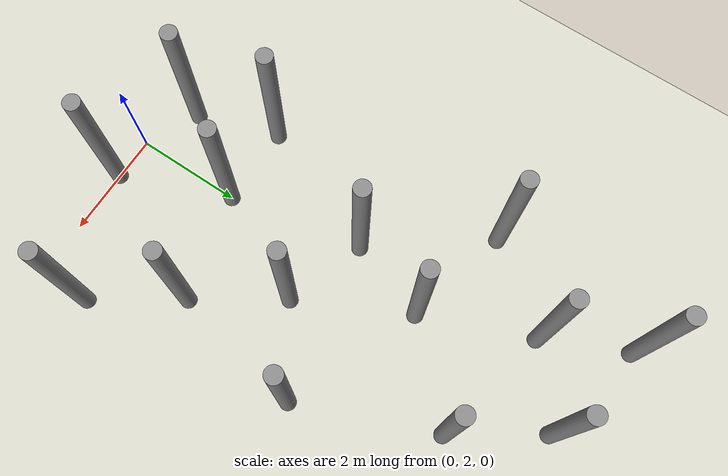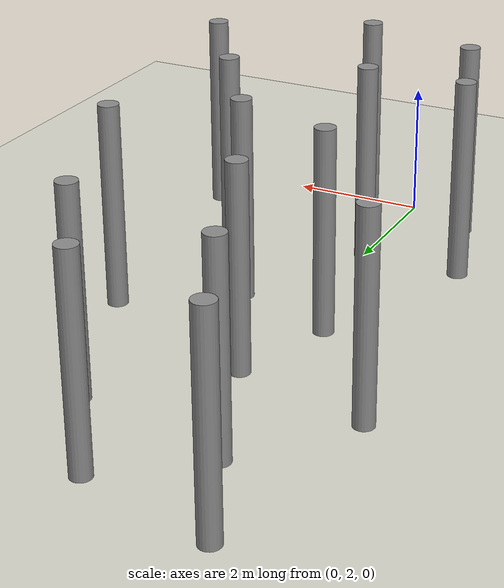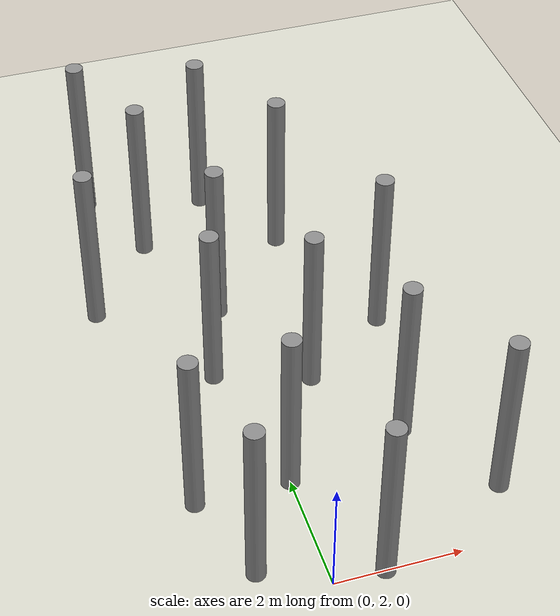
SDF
<?xml version="1.0" encoding="UTF-8"?>
<sdf version="1.9">
  <world name="pillars">
    <physics type="ode">
      <max_step_size>0.004</max_step_size>
      <real_time_factor>1.0</real_time_factor>
      <real_time_update_rate>250</real_time_update_rate>
    </physics>

    <plugin filename="gz-sim-physics-system" name="gz::sim::systems::Physics">
      <engine><filename>gz-physics-dartsim-plugin</filename></engine>
    </plugin>
    <plugin filename="gz-sim-navsat-system" name="gz::sim::systems::NavSat"/>
    <plugin filename="gz-sim-scene-broadcaster-system" name="gz::sim::systems::SceneBroadcaster"/>
    <plugin filename="gz-sim-user-commands-system" name="gz::sim::systems::UserCommands"/>
    <plugin filename="gz-sim-sensors-system" name="gz::sim::systems::Sensors">
      <render_engine>ogre2</render_engine>
    </plugin>
    <plugin filename="gz-sim-imu-system" name="gz::sim::systems::Imu"/>
    <plugin filename="gz-sim-magnetometer-system" name="gz::sim::systems::Magnetometer"/>
    <plugin filename="gz-sim-air-pressure-system" name="gz::sim::systems::AirPressure"/>

    <gravity>0 0 -9.8</gravity>
    <magnetic_field>6e-06 2.3e-05 -4.2e-05</magnetic_field>
    <atmosphere type="adiabatic"/>
    <scene>
      <grid>false</grid>
      <ambient>0.4 0.4 0.4 1</ambient>
      <background>0.7 0.8 0.95 1</background>
      <shadows>true</shadows>
    </scene>

    <!-- Ground -->
    <model name="ground_plane">
      <static>true</static>
      <link name="link">
        <collision name="collision">
          <geometry><plane><normal>0 0 1</normal><size>1 1</size></plane></geometry>
        </collision>
        <visual name="visual">
          <geometry><plane><normal>0 0 1</normal><size>500 500</size></plane></geometry>
          <material>
            <ambient>0.85 0.85 0.80 1</ambient>
            <diffuse>0.85 0.85 0.80 1</diffuse>
          </material>
        </visual>
      </link>
    </model>

    <!-- Row 1: near spawn -->
    <model name="pillar_01"><static>true</static>
      <pose>0.8 2.0 1.5 0 0 0</pose>
      <link name="link">
        <collision name="c"><geometry><cylinder><radius>0.15</radius><length>3.0</length></cylinder></geometry></collision>
        <visual name="v"><geometry><cylinder><radius>0.15</radius><length>3.0</length></cylinder></geometry>
          <material><ambient>0.55 0.55 0.55 1</ambient><diffuse>0.55 0.55 0.55 1</diffuse></material></visual>
      </link>
    </model>

    <model name="pillar_02"><static>true</static>
      <pose>-1.0 2.5 1.5 0 0 0</pose>
      <link name="link">
        <collision name="c"><geometry><cylinder><radius>0.15</radius><length>3.0</length></cylinder></geometry></collision>
        <visual name="v"><geometry><cylinder><radius>0.15</radius><length>3.0</length></cylinder></geometry>
          <material><ambient>0.55 0.55 0.55 1</ambient><diffuse>0.55 0.55 0.55 1</diffuse></material></visual>
      </link>
    </model>

    <!-- Row 2 -->
    <model name="pillar_03"><static>true</static>
      <pose>0.0 4.0 1.5 0 0 0</pose>
      <link name="link">
        <collision name="c"><geometry><cylinder><radius>0.15</radius><length>3.0</length></cylinder></geometry></collision>
        <visual name="v"><geometry><cylinder><radius>0.15</radius><length>3.0</length></cylinder></geometry>
          <material><ambient>0.55 0.55 0.55 1</ambient><diffuse>0.55 0.55 0.55 1</diffuse></material></visual>
      </link>
    </model>

    <model name="pillar_04"><static>true</static>
      <pose>2.0 4.5 1.5 0 0 0</pose>
      <link name="link">
        <collision name="c"><geometry><cylinder><radius>0.15</radius><length>3.0</length></cylinder></geometry></collision>
        <visual name="v"><geometry><cylinder><radius>0.15</radius><length>3.0</length></cylinder></geometry>
          <material><ambient>0.55 0.55 0.55 1</ambient><diffuse>0.55 0.55 0.55 1</diffuse></material></visual>
      </link>
    </model>

    <model name="pillar_05"><static>true</static>
      <pose>-1.5 4.0 1.5 0 0 0</pose>
      <link name="link">
        <collision name="c"><geometry><cylinder><radius>0.15</radius><length>3.0</length></cylinder></geometry></collision>
        <visual name="v"><geometry><cylinder><radius>0.15</radius><length>3.0</length></cylinder></geometry>
          <material><ambient>0.55 0.55 0.55 1</ambient><diffuse>0.55 0.55 0.55 1</diffuse></material></visual>
      </link>
    </model>

    <!-- Row 3 -->
    <model name="pillar_06"><static>true</static>
      <pose>1.0 6.0 1.5 0 0 0</pose>
      <link name="link">
        <collision name="c"><geometry><cylinder><radius>0.15</radius><length>3.0</length></cylinder></geometry></collision>
        <visual name="v"><geometry><cylinder><radius>0.15</radius><length>3.0</length></cylinder></geometry>
          <material><ambient>0.55 0.55 0.55 1</ambient><diffuse>0.55 0.55 0.55 1</diffuse></material></visual>
      </link>
    </model>

    <model name="pillar_07"><static>true</static>
      <pose>-0.5 6.5 1.5 0 0 0</pose>
      <link name="link">
        <collision name="c"><geometry><cylinder><radius>0.15</radius><length>3.0</length></cylinder></geometry></collision>
        <visual name="v"><geometry><cylinder><radius>0.15</radius><length>3.0</length></cylinder></geometry>
          <material><ambient>0.55 0.55 0.55 1</ambient><diffuse>0.55 0.55 0.55 1</diffuse></material></visual>
      </link>
    </model>

    <model name="pillar_08"><static>true</static>
      <pose>2.5 7.0 1.5 0 0 0</pose>
      <link name="link">
        <collision name="c"><geometry><cylinder><radius>0.15</radius><length>3.0</length></cylinder></geometry></collision>
        <visual name="v"><geometry><cylinder><radius>0.15</radius><length>3.0</length></cylinder></geometry>
          <material><ambient>0.55 0.55 0.55 1</ambient><diffuse>0.55 0.55 0.55 1</diffuse></material></visual>
      </link>
    </model>

    <!-- Row 4 -->
    <model name="pillar_09"><static>true</static>
      <pose>0.0 8.0 1.5 0 0 0</pose>
      <link name="link">
        <collision name="c"><geometry><cylinder><radius>0.15</radius><length>3.0</length></cylinder></geometry></collision>
        <visual name="v"><geometry><cylinder><radius>0.15</radius><length>3.0</length></cylinder></geometry>
          <material><ambient>0.55 0.55 0.55 1</ambient><diffuse>0.55 0.55 0.55 1</diffuse></material></visual>
      </link>
    </model>

    <model name="pillar_10"><static>true</static>
      <pose>-2.0 8.5 1.5 0 0 0</pose>
      <link name="link">
        <collision name="c"><geometry><cylinder><radius>0.15</radius><length>3.0</length></cylinder></geometry></collision>
        <visual name="v"><geometry><cylinder><radius>0.15</radius><length>3.0</length></cylinder></geometry>
          <material><ambient>0.55 0.55 0.55 1</ambient><diffuse>0.55 0.55 0.55 1</diffuse></material></visual>
      </link>
    </model>

    <!-- Row 5: far end -->
    <model name="pillar_11"><static>true</static>
      <pose>1.5 9.5 1.5 0 0 0</pose>
      <link name="link">
        <collision name="c"><geometry><cylinder><radius>0.15</radius><length>3.0</length></cylinder></geometry></collision>
        <visual name="v"><geometry><cylinder><radius>0.15</radius><length>3.0</length></cylinder></geometry>
          <material><ambient>0.55 0.55 0.55 1</ambient><diffuse>0.55 0.55 0.55 1</diffuse></material></visual>
      </link>
    </model>

    <model name="pillar_12"><static>true</static>
      <pose>-0.8 10.0 1.5 0 0 0</pose>
      <link name="link">
        <collision name="c"><geometry><cylinder><radius>0.15</radius><length>3.0</length></cylinder></geometry></collision>
        <visual name="v"><geometry><cylinder><radius>0.15</radius><length>3.0</length></cylinder></geometry>
          <material><ambient>0.55 0.55 0.55 1</ambient><diffuse>0.55 0.55 0.55 1</diffuse></material></visual>
      </link>
    </model>

    <model name="pillar_13"><static>true</static>
      <pose>0.5 11.0 1.5 0 0 0</pose>
      <link name="link">
        <collision name="c"><geometry><cylinder><radius>0.15</radius><length>3.0</length></cylinder></geometry></collision>
        <visual name="v"><geometry><cylinder><radius>0.15</radius><length>3.0</length></cylinder></geometry>
          <material><ambient>0.55 0.55 0.55 1</ambient><diffuse>0.55 0.55 0.55 1</diffuse></material></visual>
      </link>
    </model>

    <model name="pillar_14"><static>true</static>
      <pose>-1.5 11.5 1.5 0 0 0</pose>
      <link name="link">
        <collision name="c"><geometry><cylinder><radius>0.15</radius><length>3.0</length></cylinder></geometry></collision>
        <visual name="v"><geometry><cylinder><radius>0.15</radius><length>3.0</length></cylinder></geometry>
          <material><ambient>0.55 0.55 0.55 1</ambient><diffuse>0.55 0.55 0.55 1</diffuse></material></visual>
      </link>
    </model>

    <!-- Outlier -->
    <model name="pillar_15"><static>true</static>
      <pose>3.0 3.0 1.5 0 0 0</pose>
      <link name="link">
        <collision name="c"><geometry><cylinder><radius>0.15</radius><length>3.0</length></cylinder></geometry></collision>
        <visual name="v"><geometry><cylinder><radius>0.15</radius><length>3.0</length></cylinder></geometry>
          <material><ambient>0.55 0.55 0.55 1</ambient><diffuse>0.55 0.55 0.55 1</diffuse></material></visual>
      </link>
    </model>

    <light name="sunUTC" type="directional">
      <pose>0 0 500 0 -0 0</pose>
      <cast_shadows>true</cast_shadows>
      <intensity>1</intensity>
      <direction>0.001 0.625 -0.78</direction>
      <diffuse>0.904 0.904 0.904 1</diffuse>
      <specular>0.271 0.271 0.271 1</specular>
      <attenuation>
        <range>2000</range><linear>0</linear>
        <constant>1</constant><quadratic>0</quadratic>
      </attenuation>
    </light>

    <spherical_coordinates>
      <surface_model>EARTH_WGS84</surface_model>
      <world_frame_orientation>ENU</world_frame_orientation>
      <latitude_deg>47.397971057728974</latitude_deg>
      <longitude_deg>8.546163739800146</longitude_deg>
      <elevation>0</elevation>
    </spherical_coordinates>
  </world>
</sdf>
